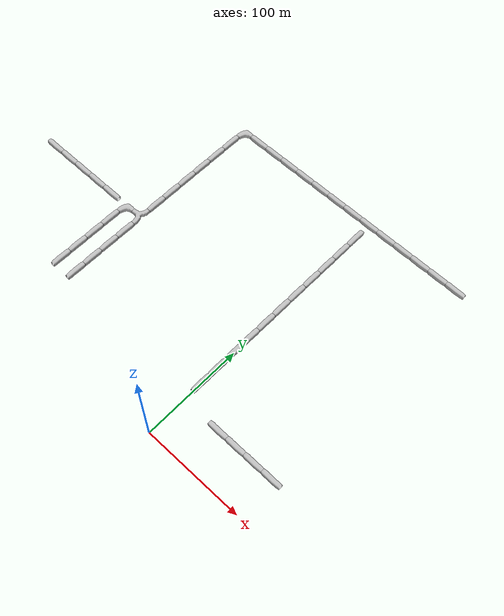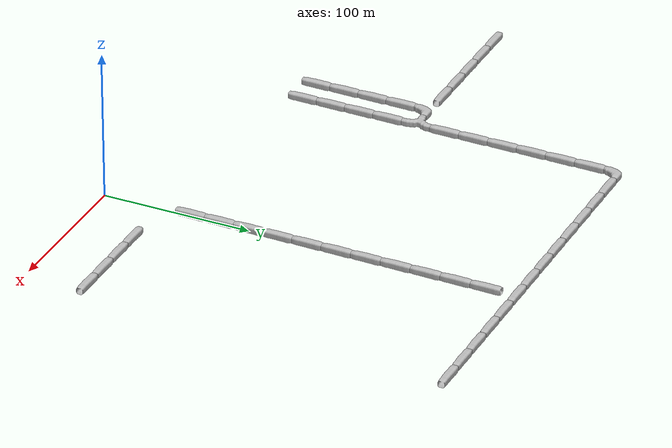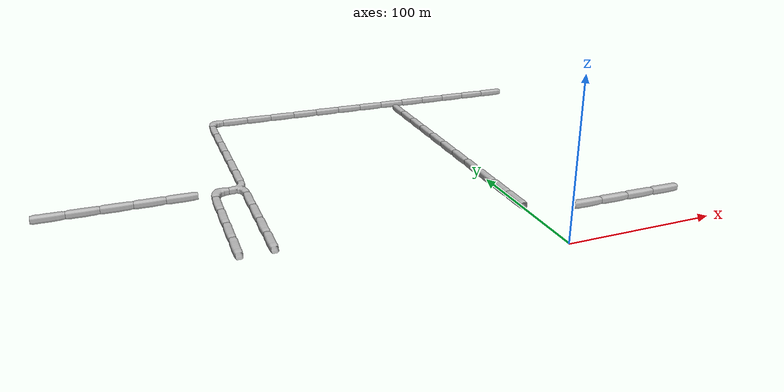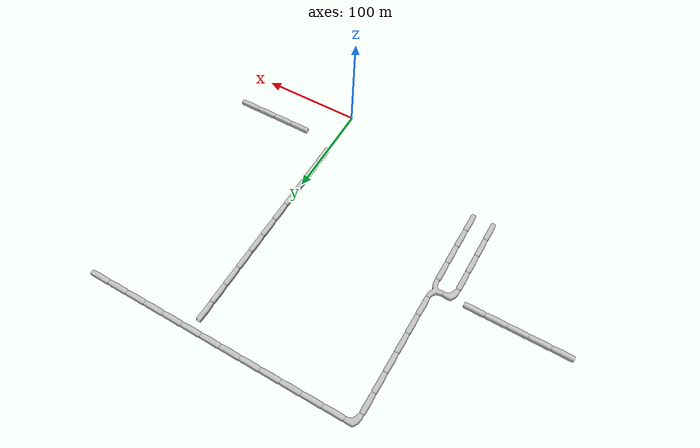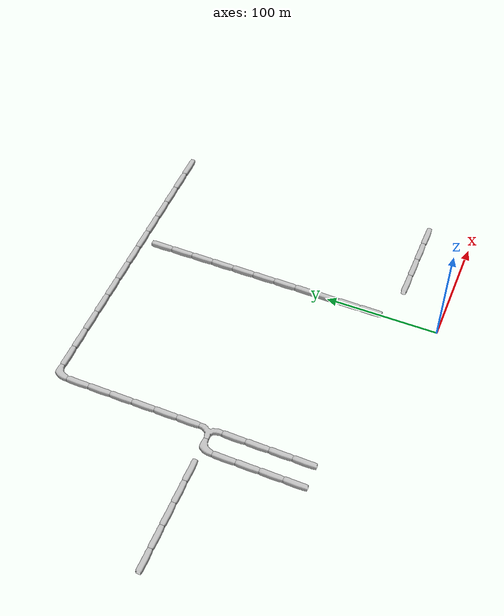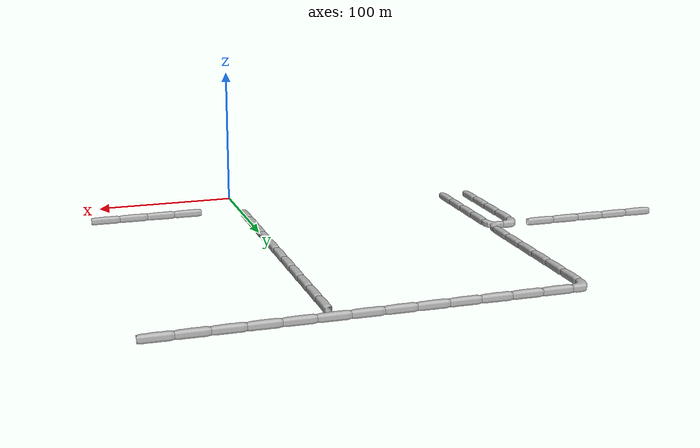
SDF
<sdf version="1.6">
 <world name="cave_8000_64">
  <include>
   <static>true</static>
   <name>cave_-9_3</name>
   <pose>-180 60 0 0 0 0.0</pose>
   <uri>model://cave_straight_20m</uri>
  </include>
  <include>
   <static>true</static>
   <name>cave_-9_4</name>
   <pose>-180 80 0 0 0 0.0</pose>
   <uri>model://cave_straight_20m</uri>
  </include>
  <include>
   <static>true</static>
   <name>cave_-9_5</name>
   <pose>-180 100 0 0 0 0.0</pose>
   <uri>model://cave_straight_20m</uri>
  </include>
  <include>
   <static>true</static>
   <name>cave_-9_6</name>
   <pose>-180 120 0 0 0 0.0</pose>
   <uri>model://cave_straight_20m</uri>
  </include>
  <include>
   <static>true</static>
   <name>cave_-9_7</name>
   <pose>-180 140 0 0 0 -1.5707963267948966</pose>
   <uri>model://cave_L_20m</uri>
  </include>
  <include>
   <static>true</static>
   <name>cave_-8_7</name>
   <pose>-160 140 0 0 0 1.5707963267948966</pose>
   <uri>model://cave_3way_20m</uri>
  </include>
  <include>
   <static>true</static>
   <name>cave_-8_6</name>
   <pose>-160 120 0 0 0 0.0</pose>
   <uri>model://cave_straight_20m</uri>
  </include>
  <include>
   <static>true</static>
   <name>cave_-8_5</name>
   <pose>-160 100 0 0 0 0.0</pose>
   <uri>model://cave_straight_20m</uri>
  </include>
  <include>
   <static>true</static>
   <name>cave_-8_4</name>
   <pose>-160 80 0 0 0 0.0</pose>
   <uri>model://cave_straight_20m</uri>
  </include>
  <include>
   <static>true</static>
   <name>cave_-8_3</name>
   <pose>-160 60 0 0 0 0.0</pose>
   <uri>model://cave_straight_20m</uri>
  </include>
  <include>
   <static>true</static>
   <name>cave_-8_8</name>
   <pose>-160 160 0 0 0 0.0</pose>
   <uri>model://cave_straight_20m</uri>
  </include>
  <include>
   <static>true</static>
   <name>cave_-8_9</name>
   <pose>-160 180 0 0 0 0.0</pose>
   <uri>model://cave_straight_20m</uri>
  </include>
  <include>
   <static>true</static>
   <name>cave_-8_10</name>
   <pose>-160 200 0 0 0 0.0</pose>
   <uri>model://cave_straight_20m</uri>
  </include>
  <include>
   <static>true</static>
   <name>cave_-8_11</name>
   <pose>-160 220 0 0 0 0.0</pose>
   <uri>model://cave_straight_20m</uri>
  </include>
  <include>
   <static>true</static>
   <name>cave_-8_12</name>
   <pose>-160 240 0 0 0 0.0</pose>
   <uri>model://cave_straight_20m</uri>
  </include>
  <include>
   <static>true</static>
   <name>cave_-8_13</name>
   <pose>-160 260 0 0 0 0.0</pose>
   <uri>model://cave_straight_20m</uri>
  </include>
  <include>
   <static>true</static>
   <name>cave_-8_14</name>
   <pose>-160 280 0 0 0 -1.5707963267948966</pose>
   <uri>model://cave_L_20m</uri>
  </include>
  <include>
   <static>true</static>
   <name>cave_-7_14</name>
   <pose>-140 280 0 0 0 1.5707963267948966</pose>
   <uri>model://cave_straight_20m</uri>
  </include>
  <include>
   <static>true</static>
   <name>cave_-6_14</name>
   <pose>-120 280 0 0 0 1.5707963267948966</pose>
   <uri>model://cave_straight_20m</uri>
  </include>
  <include>
   <static>true</static>
   <name>cave_-5_14</name>
   <pose>-100 280 0 0 0 1.5707963267948966</pose>
   <uri>model://cave_straight_20m</uri>
  </include>
  <include>
   <static>true</static>
   <name>cave_-4_14</name>
   <pose>-80 280 0 0 0 1.5707963267948966</pose>
   <uri>model://cave_straight_20m</uri>
  </include>
  <include>
   <static>true</static>
   <name>cave_-3_14</name>
   <pose>-60 280 0 0 0 1.5707963267948966</pose>
   <uri>model://cave_straight_20m</uri>
  </include>
  <include>
   <static>true</static>
   <name>cave_-2_14</name>
   <pose>-40 280 0 0 0 1.5707963267948966</pose>
   <uri>model://cave_straight_20m</uri>
  </include>
  <include>
   <static>true</static>
   <name>cave_-1_14</name>
   <pose>-20 280 0 0 0 1.5707963267948966</pose>
   <uri>model://cave_straight_20m</uri>
  </include>
  <include>
   <static>true</static>
   <name>cave_0_14</name>
   <pose>0 280 0 0 0 1.5707963267948966</pose>
   <uri>model://cave_straight_20m</uri>
  </include>
  <include>
   <static>true</static>
   <name>cave_1_14</name>
   <pose>20 280 0 0 0 1.5707963267948966</pose>
   <uri>model://cave_straight_20m</uri>
  </include>
  <include>
   <static>true</static>
   <name>cave_2_14</name>
   <pose>40 280 0 0 0 1.5707963267948966</pose>
   <uri>model://cave_straight_20m</uri>
  </include>
  <include>
   <static>true</static>
   <name>cave_3_14</name>
   <pose>60 280 0 0 0 1.5707963267948966</pose>
   <uri>model://cave_straight_20m</uri>
  </include>
  <include>
   <static>true</static>
   <name>cave_4_14</name>
   <pose>80 280 0 0 0 1.5707963267948966</pose>
   <uri>model://cave_straight_20m</uri>
  </include>
  <include>
   <static>true</static>
   <name>cave_5_14</name>
   <pose>100 280 0 0 0 1.5707963267948966</pose>
   <uri>model://cave_straight_20m</uri>
  </include>
  <include>
   <static>true</static>
   <name>cave_5_2</name>
   <pose>100 40 0 0 0 1.5707963267948966</pose>
   <uri>model://cave_straight_20m</uri>
  </include>
  <include>
   <static>true</static>
   <name>cave_4_2</name>
   <pose>80 40 0 0 0 1.5707963267948966</pose>
   <uri>model://cave_straight_20m</uri>
  </include>
  <include>
   <static>true</static>
   <name>cave_3_2</name>
   <pose>60 40 0 0 0 1.5707963267948966</pose>
   <uri>model://cave_straight_20m</uri>
  </include>
  <include>
   <static>true</static>
   <name>cave_2_2</name>
   <pose>40 40 0 0 0 1.5707963267948966</pose>
   <uri>model://cave_straight_20m</uri>
  </include>
  <include>
   <static>true</static>
   <name>cave_0_3</name>
   <pose>0 60 0 0 0 0.0</pose>
   <uri>model://cave_straight_20m</uri>
  </include>
  <include>
   <static>true</static>
   <name>cave_0_4</name>
   <pose>0 80 0 0 0 0.0</pose>
   <uri>model://cave_straight_20m</uri>
  </include>
  <include>
   <static>true</static>
   <name>cave_0_5</name>
   <pose>0 100 0 0 0 0.0</pose>
   <uri>model://cave_straight_20m</uri>
  </include>
  <include>
   <static>true</static>
   <name>cave_0_6</name>
   <pose>0 120 0 0 0 0.0</pose>
   <uri>model://cave_straight_20m</uri>
  </include>
  <include>
   <static>true</static>
   <name>cave_0_7</name>
   <pose>0 140 0 0 0 0.0</pose>
   <uri>model://cave_straight_20m</uri>
  </include>
  <include>
   <static>true</static>
   <name>cave_0_8</name>
   <pose>0 160 0 0 0 0.0</pose>
   <uri>model://cave_straight_20m</uri>
  </include>
  <include>
   <static>true</static>
   <name>cave_0_9</name>
   <pose>0 180 0 0 0 0.0</pose>
   <uri>model://cave_straight_20m</uri>
  </include>
  <include>
   <static>true</static>
   <name>cave_0_10</name>
   <pose>0 200 0 0 0 0.0</pose>
   <uri>model://cave_straight_20m</uri>
  </include>
  <include>
   <static>true</static>
   <name>cave_0_11</name>
   <pose>0 220 0 0 0 0.0</pose>
   <uri>model://cave_straight_20m</uri>
  </include>
  <include>
   <static>true</static>
   <name>cave_0_12</name>
   <pose>0 240 0 0 0 0.0</pose>
   <uri>model://cave_straight_20m</uri>
  </include>
  <include>
   <static>true</static>
   <name>cave_0_13</name>
   <pose>0 260 0 0 0 0.0</pose>
   <uri>model://cave_straight_20m</uri>
  </include>
  <include>
   <static>true</static>
   <name>cave_-14_7</name>
   <pose>-280 140 0 0 0 1.5707963267948966</pose>
   <uri>model://cave_straight_20m</uri>
  </include>
  <include>
   <static>true</static>
   <name>cave_-13_7</name>
   <pose>-260 140 0 0 0 1.5707963267948966</pose>
   <uri>model://cave_straight_20m</uri>
  </include>
  <include>
   <static>true</static>
   <name>cave_-12_7</name>
   <pose>-240 140 0 0 0 1.5707963267948966</pose>
   <uri>model://cave_straight_20m</uri>
  </include>
  <include>
   <static>true</static>
   <name>cave_-11_7</name>
   <pose>-220 140 0 0 0 1.5707963267948966</pose>
   <uri>model://cave_straight_20m</uri>
  </include>
  <include>
   <static>true</static>
   <name>cave_-10_7</name>
   <pose>-200 140 0 0 0 1.5707963267948966</pose>
   <uri>model://cave_straight_20m</uri>
  </include>
 </world>
</sdf>
